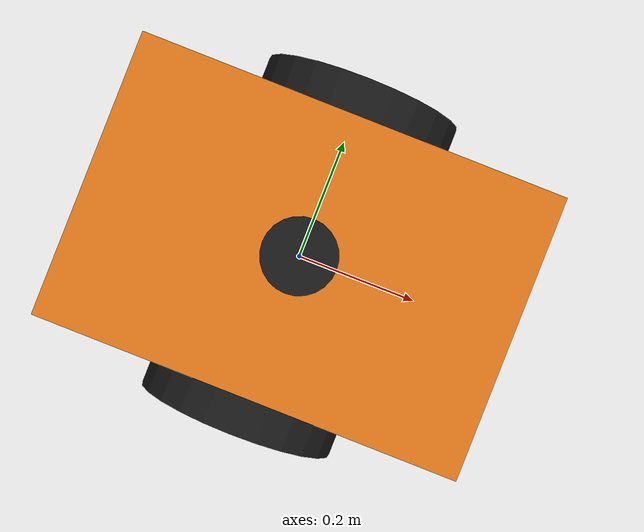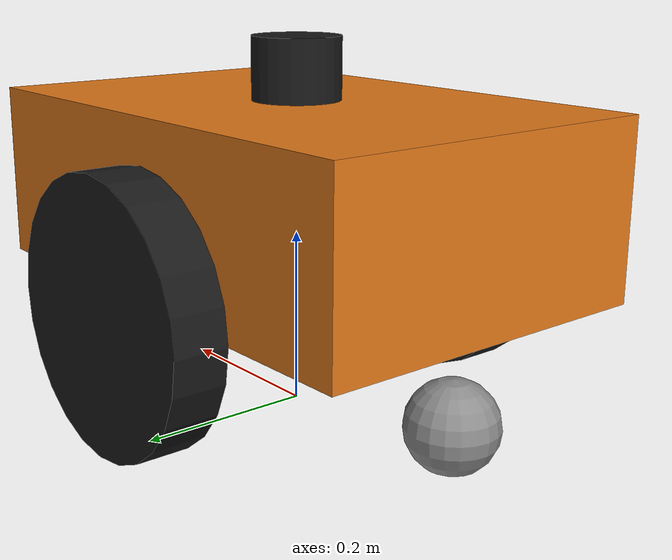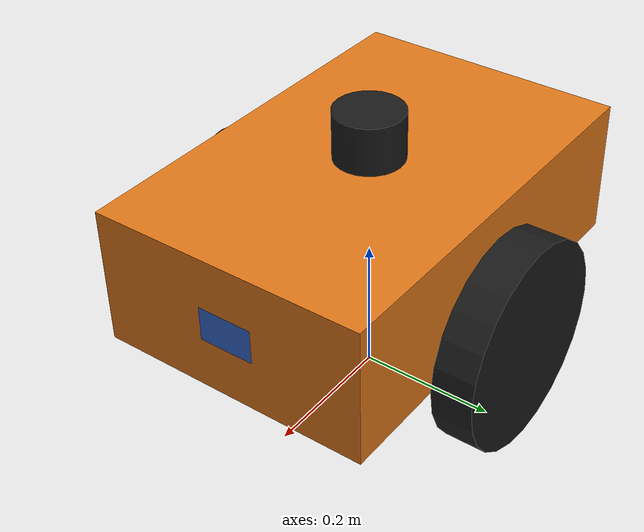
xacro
<?xml version="1.0"?>
<robot name="agricultural_robot" xmlns:xacro="http://www.ros.org/wiki/xacro">

  <!-- ===== Robot dimensions ===== -->
  <xacro:property name="base_length"     value="0.60"/>
  <xacro:property name="base_width"      value="0.40"/>
  <xacro:property name="base_height"     value="0.20"/>
  <xacro:property name="wheel_radius"    value="0.15"/>
  <xacro:property name="wheel_width"     value="0.06"/>
  <!-- wheel separation = body width + one wheel width (wheels flush with body sides) -->
  <xacro:property name="wheel_sep"       value="0.46"/>
  <xacro:property name="caster_radius"   value="0.05"/>
  <xacro:property name="robot_mass"      value="25.0"/>
  <xacro:property name="wheel_mass"      value="2.0"/>

  <!-- ===== Materials ===== -->
  <material name="orange"><color rgba="0.88 0.47 0.10 1.0"/></material>
  <material name="black"> <color rgba="0.10 0.10 0.10 1.0"/></material>
  <material name="grey">  <color rgba="0.55 0.55 0.55 1.0"/></material>
  <material name="blue">  <color rgba="0.20 0.40 0.80 1.0"/></material>
  <material name="white"> <color rgba="0.90 0.90 0.90 1.0"/></material>

  <!-- ===================================================
       BASE_FOOTPRINT  (ground-level root frame)
       =================================================== -->
  <link name="base_footprint"/>

  <joint name="base_footprint_joint" type="fixed">
    <parent link="base_footprint"/>
    <child  link="base_link"/>
    <origin xyz="0 0 ${wheel_radius}" rpy="0 0 0"/>
  </joint>

  <!-- ===================================================
       BASE_LINK  (robot body)
       =================================================== -->
  <link name="base_link">
    <visual>
      <origin xyz="0 0 ${base_height/2}" rpy="0 0 0"/>
      <geometry><box size="${base_length} ${base_width} ${base_height}"/></geometry>
      <material name="orange"/>
    </visual>
    <collision>
      <origin xyz="0 0 ${base_height/2}" rpy="0 0 0"/>
      <geometry><box size="${base_length} ${base_width} ${base_height}"/></geometry>
    </collision>
    <inertial>
      <origin xyz="0 0 ${base_height/2}"/>
      <mass value="${robot_mass}"/>
      <inertia
        ixx="${robot_mass*(base_width**2  + base_height**2)/12}"
        iyy="${robot_mass*(base_length**2 + base_height**2)/12}"
        izz="${robot_mass*(base_length**2 + base_width**2) /12}"
        ixy="0" ixz="0" iyz="0"/>
    </inertial>
  </link>

  <xacro:macro name="wheel" params="name y_sign">
    <link name="${name}_wheel">
      <visual>
        <geometry><cylinder radius="${wheel_radius}" length="${wheel_width}"/></geometry>
        <material name="black"/>
      </visual>
      <collision>
        <geometry><cylinder radius="${wheel_radius}" length="${wheel_width}"/></geometry>
      </collision>
      <inertial>
        <mass value="${wheel_mass}"/>
        <inertia
          ixx="${wheel_mass*(3*wheel_radius**2 + wheel_width**2)/12}"
          iyy="${wheel_mass*(3*wheel_radius**2 + wheel_width**2)/12}"
          izz="${wheel_mass*wheel_radius**2/2}"
          ixy="0" ixz="0" iyz="0"/>
      </inertial>
    </link>
    <joint name="${name}_wheel_joint" type="continuous">
      <parent link="base_link"/>
      <child  link="${name}_wheel"/>
      <origin xyz="0 ${y_sign * wheel_sep/2} 0" rpy="${-pi/2} 0 0"/>
      <axis xyz="0 0 1"/>
    </joint>
    <gazebo reference="${name}_wheel">
      <mu1>1.0</mu1>
      <mu2>1.0</mu2>
      <material>Gazebo/Black</material>
    </gazebo>
  </xacro:macro>

  <xacro:wheel name="left"  y_sign=" 1"/>
  <xacro:wheel name="right" y_sign="-1"/>

  <!-- ===================================================
       REAR CASTER (passive, frictionless)
       =================================================== -->
  <link name="caster_wheel">
    <visual>
      <geometry><sphere radius="${caster_radius}"/></geometry>
      <material name="grey"/>
    </visual>
    <collision>
      <geometry><sphere radius="${caster_radius}"/></geometry>
    </collision>
    <inertial>
      <mass value="0.5"/>
      <inertia ixx="0.001" iyy="0.001" izz="0.001" ixy="0" ixz="0" iyz="0"/>
    </inertial>
  </link>
  <joint name="caster_joint" type="fixed">
    <parent link="base_link"/>
    <child  link="caster_wheel"/>
    <!-- rear of body, dropped so the sphere rests on the ground -->
    <origin xyz="${-(base_length/2 - caster_radius)} 0 ${-(wheel_radius - caster_radius)}" rpy="0 0 0"/>
  </joint>
  <gazebo reference="caster_wheel">
    <mu1>0.0</mu1>
    <mu2>0.0</mu2>
    <material>Gazebo/Grey</material>
  </gazebo>

  <!-- ===================================================
       2-D LIDAR  (mounted on top of body)
       =================================================== -->
  <link name="lidar_link">
    <visual>
      <geometry><cylinder radius="0.05" length="0.07"/></geometry>
      <material name="black"/>
    </visual>
    <collision>
      <geometry><cylinder radius="0.05" length="0.07"/></geometry>
    </collision>
    <inertial>
      <mass value="0.2"/>
      <inertia ixx="0.0001" iyy="0.0001" izz="0.0001" ixy="0" ixz="0" iyz="0"/>
    </inertial>
  </link>
  <joint name="lidar_joint" type="fixed">
    <parent link="base_link"/>
    <child  link="lidar_link"/>
    <origin xyz="0 0 ${base_height + 0.035}" rpy="0 0 0"/>
  </joint>

  <!-- ===================================================
       FRONT CAMERA
       =================================================== -->
  <link name="camera_link">
    <visual>
      <geometry><box size="0.05 0.08 0.05"/></geometry>
      <material name="blue"/>
    </visual>
    <collision>
      <geometry><box size="0.05 0.08 0.05"/></geometry>
    </collision>
    <inertial>
      <mass value="0.1"/>
      <inertia ixx="0.0001" iyy="0.0001" izz="0.0001" ixy="0" ixz="0" iyz="0"/>
    </inertial>
  </link>
  <joint name="camera_joint" type="fixed">
    <parent link="base_link"/>
    <child  link="camera_link"/>
    <origin xyz="${base_length/2 - 0.025} 0 ${base_height/2}" rpy="0 0 0"/>
  </joint>

  <!-- ===================================================
       GAZEBO – body colour
       =================================================== -->
  <gazebo reference="base_link">
    <material>Gazebo/Orange</material>
  </gazebo>
  <gazebo reference="lidar_link">
    <material>Gazebo/Black</material>
  </gazebo>
  <gazebo reference="camera_link">
    <material>Gazebo/Blue</material>
  </gazebo>

  <gazebo>
    <plugin filename="gz-sim-diff-drive-system"
            name="gz::sim::systems::DiffDrive">
      <left_joint>left_wheel_joint</left_joint>
      <right_joint>right_wheel_joint</right_joint>
      <wheel_separation>${wheel_sep}</wheel_separation>
      <wheel_radius>${wheel_radius}</wheel_radius>
      <odom_publish_frequency>50</odom_publish_frequency>
      <!-- Gz topic names — bridged to ROS by ros_gz_bridge -->
      <topic>cmd_vel</topic>
      <odom_topic>odom</odom_topic>
      <tf_topic>tf</tf_topic>
      <frame_id>odom</frame_id>
      <child_frame_id>base_footprint</child_frame_id>
      <min_velocity>-0.5</min_velocity>
      <max_velocity>0.5</max_velocity>
      <min_acceleration>-3.0</min_acceleration>
      <max_acceleration>3.0</max_acceleration>
    </plugin>
  </gazebo>

  <gazebo>
    <plugin filename="gz-sim-joint-state-publisher-system"
            name="gz::sim::systems::JointStatePublisher">
      <topic>joint_states</topic>
      <joint_name>left_wheel_joint</joint_name>
      <joint_name>right_wheel_joint</joint_name>
    </plugin>
  </gazebo>

  <!-- ===================================================
       GAZEBO SENSOR – 2-D LIDAR  (gpu_lidar type)
       =================================================== -->
  <gazebo reference="lidar_link">
    <sensor name="lidar" type="gpu_lidar">
      <pose relative_to="lidar_link">0 0 0 0 0 0</pose>
      <gz_frame_id>lidar_link</gz_frame_id>
      <topic>scan</topic>
      <update_rate>10</update_rate>
      <always_on>true</always_on>
      <visualize>false</visualize>
      <lidar>
        <scan>
          <horizontal>
            <samples>360</samples>
            <resolution>1.0</resolution>
            <min_angle>-3.14159265</min_angle>
            <max_angle>3.14159265</max_angle>
          </horizontal>
        </scan>
        <range>
          <min>0.15</min>
          <max>12.0</max>
          <resolution>0.01</resolution>
        </range>
        <noise>
          <type>gaussian</type>
          <mean>0.0</mean>
          <stddev>0.01</stddev>
        </noise>
      </lidar>
    </sensor>
  </gazebo>

  <!-- ===================================================
       GAZEBO SENSOR – Front Camera
       =================================================== -->
  <gazebo reference="camera_link">
    <sensor name="camera" type="camera">
      <pose relative_to="camera_link">0 0 0 0 0 0</pose>
      <gz_frame_id>camera_link</gz_frame_id>
      <topic>camera/image_raw</topic>
      <update_rate>30</update_rate>
      <always_on>true</always_on>
      <visualize>true</visualize>
      <camera>
        <horizontal_fov>1.3962634</horizontal_fov>
        <image>
          <width>640</width>
          <height>480</height>
          <format>R8G8B8</format>
        </image>
        <clip>
          <near>0.02</near>
          <far>300</far>
        </clip>
        <noise>
          <type>gaussian</type>
          <mean>0.0</mean>
          <stddev>0.007</stddev>
        </noise>
      </camera>
    </sensor>
  </gazebo>

  <!-- ===================================================
       GAZEBO SENSOR – IMU
       =================================================== -->
  <gazebo reference="base_link">
    <sensor name="imu" type="imu">
      <gz_frame_id>base_link</gz_frame_id>
      <topic>imu</topic>
      <update_rate>100</update_rate>
      <always_on>true</always_on>
      <imu>
        <angular_velocity>
          <x><noise type="gaussian"><mean>0</mean><stddev>0.009</stddev></noise></x>
          <y><noise type="gaussian"><mean>0</mean><stddev>0.009</stddev></noise></y>
          <z><noise type="gaussian"><mean>0</mean><stddev>0.009</stddev></noise></z>
        </angular_velocity>
        <linear_acceleration>
          <x><noise type="gaussian"><mean>0</mean><stddev>0.021</stddev></noise></x>
          <y><noise type="gaussian"><mean>0</mean><stddev>0.021</stddev></noise></y>
          <z><noise type="gaussian"><mean>0</mean><stddev>0.021</stddev></noise></z>
        </linear_acceleration>
      </imu>
    </sensor>
  </gazebo>

</robot>
